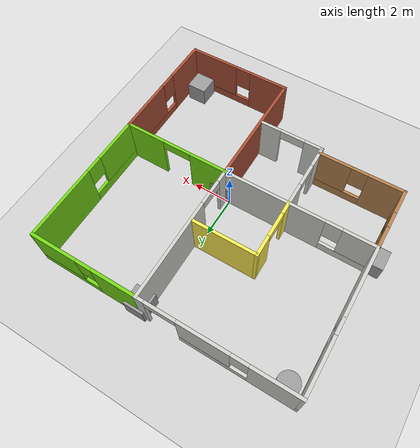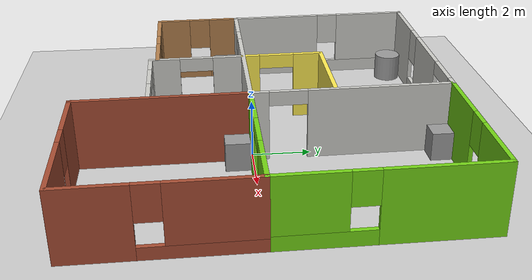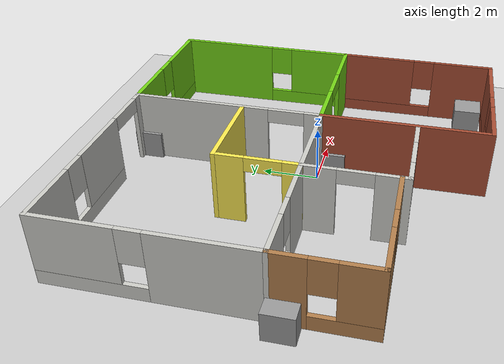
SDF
<sdf version="1.6">
 <world name="default">
  <light name="sun" type="directional">
   <pose>0 0 10 0 -0 0</pose>
   <diffuse>0.8 0.8 0.8 1</diffuse>
   <specular>0.2 0.2 0.2 1</specular>
   <attenuation>
    <range>1000</range>
    <constant>0.9</constant>
    <linear>0.01</linear>
    <quadratic>0.001</quadratic>
   </attenuation>
   <direction>-0.5 0.1 -0.9</direction>
  </light>
  <model name="ground_plane">
   <static>1</static>
   <link name="link">
    <collision name="collision">
     <geometry><plane><normal>0 0 1</normal><size>100 100</size></plane></geometry>
     <surface>
      <contact><collide_bitmask>65535</collide_bitmask></contact>
      <friction><ode><mu>100</mu><mu2>50</mu2></ode></friction>
     </surface>
    </collision>
    <visual name="visual">
     <cast_shadows>0</cast_shadows>
     <geometry><plane><normal>0 0 1</normal><size>100 100</size></plane></geometry>
     <material>
      <script><uri>file://media/materials/scripts/gazebo.material</uri><name>Gazebo/Grey</name></script>
     </material>
    </visual>
   </link>
  </model>
  <gravity>0 0 -9.8</gravity>
  <magnetic_field>6e-06 2.3e-05 -4.2e-05</magnetic_field>
  <atmosphere type="adiabatic"/>
  <physics name="default_physics" default="0" type="ode">
   <max_step_size>0.001</max_step_size>
   <real_time_factor>1</real_time_factor>
   <real_time_update_rate>1000</real_time_update_rate>
  </physics>
  <scene><ambient>0.4 0.4 0.4 1</ambient><background>0.7 0.7 0.7 1</background><shadows>1</shadows></scene>
  <spherical_coordinates>
   <surface_model>EARTH_WGS84</surface_model>
   <latitude_deg>0</latitude_deg>
   <longitude_deg>0</longitude_deg>
   <elevation>0</elevation>
   <heading_deg>0</heading_deg>
  </spherical_coordinates>
  <model name="trotbot">
   <pose>-0.746359 0.45451 0 0.004921 0.010968 0.003426</pose>
   <link name="Wall_0">
    <pose>-2.67518 6.34997 0 0 -0 0</pose>
    <visual name="Wall_0_Visual_0">
     <pose>-2.59633 0 1.25 0 -0 0</pose>
     <geometry><box><size>2.30734 0.15 2.5</size></box></geometry>
     <material>
      <script><uri>file://media/materials/scripts/gazebo.material</uri><name>Gazebo/CeilingTiled</name></script>
      <ambient>0.435294 0.796078 0.67451 1</ambient>
     </material>
     <meta><layer>0</layer></meta>
    </visual>
    <collision name="Wall_0_Collision_0">
     <geometry><box><size>2.30734 0.15 2.5</size></box></geometry>
     <pose>-2.59633 0 1.25 0 -0 0</pose>
    </collision>
    <visual name="Wall_0_Visual_1">
     <pose>3.52539 0 1.25 0 -0 0</pose>
     <geometry><box><size>0.449218 0.15 2.5</size></box></geometry>
     <material>
      <script><uri>file://media/materials/scripts/gazebo.material</uri><name>Gazebo/CeilingTiled</name></script>
      <ambient>0.435294 0.796078 0.67451 1</ambient>
     </material>
     <meta><layer>0</layer></meta>
    </visual>
    <collision name="Wall_0_Collision_1">
     <geometry><box><size>0.449218 0.15 2.5</size></box></geometry>
     <pose>3.52539 0 1.25 0 -0 0</pose>
    </collision>
    <visual name="Wall_0_Visual_2">
     <pose>0.174887 0 0.25 0 -0 0</pose>
     <geometry><box><size>3.23509 0.15 0.5</size></box></geometry>
     <material>
      <script><uri>file://media/materials/scripts/gazebo.material</uri><name>Gazebo/CeilingTiled</name></script>
      <ambient>0.435294 0.796078 0.67451 1</ambient>
     </material>
     <meta><layer>0</layer></meta>
    </visual>
    <collision name="Wall_0_Collision_2">
     <geometry><box><size>3.23509 0.15 0.5</size></box></geometry>
     <pose>0.174887 0 0.25 0 -0 0</pose>
    </collision>
    <visual name="Wall_0_Visual_3">
     <pose>0.574887 0 1.5 0 -0 0</pose>
     <geometry><box><size>2.43509 0.15 2</size></box></geometry>
     <material>
      <script><uri>file://media/materials/scripts/gazebo.material</uri><name>Gazebo/CeilingTiled</name></script>
      <ambient>0.435294 0.796078 0.67451 1</ambient>
     </material>
     <meta><layer>0</layer></meta>
    </visual>
    <collision name="Wall_0_Collision_3">
     <geometry><box><size>2.43509 0.15 2</size></box></geometry>
     <pose>0.574887 0 1.5 0 -0 0</pose>
    </collision>
    <visual name="Wall_0_Visual_4">
     <pose>-1.04266 0 1.9 0 -0 0</pose>
     <geometry><box><size>0.8 0.15 1.2</size></box></geometry>
     <material>
      <script><uri>file://media/materials/scripts/gazebo.material</uri><name>Gazebo/CeilingTiled</name></script>
      <ambient>0.435294 0.796078 0.67451 1</ambient>
     </material>
     <meta><layer>0</layer></meta>
    </visual>
    <collision name="Wall_0_Collision_4">
     <geometry><box><size>0.8 0.15 1.2</size></box></geometry>
     <pose>-1.04266 0 1.9 0 -0 0</pose>
    </collision>
    <visual name="Wall_0_Visual_5">
     <pose>2.54661 0 2.25 0 -0 0</pose>
     <geometry><box><size>1.50835 0.15 0.5</size></box></geometry>
     <material>
      <script><uri>file://media/materials/scripts/gazebo.material</uri><name>Gazebo/CeilingTiled</name></script>
      <ambient>0.435294 0.796078 0.67451 1</ambient>
     </material>
     <meta><layer>0</layer></meta>
    </visual>
    <collision name="Wall_0_Collision_5">
     <geometry><box><size>1.50835 0.15 0.5</size></box></geometry>
     <pose>2.54661 0 2.25 0 -0 0</pose>
    </collision>
   </link>
   <link name="Wall_1">
    <pose>0.999823 2.92497 0 0 -0 -1.5708</pose>
    <visual name="Wall_1_Visual_0">
     <pose>-0.990533 0 1.25 0 -0 0</pose>
     <geometry><box><size>5.01893 0.15 2.5</size></box></geometry>
     <material>
      <script><uri>file://media/materials/scripts/gazebo.material</uri><name>Gazebo/CeilingTiled</name></script>
      <ambient>0.45098 0.823529 0.0862745 1</ambient>
     </material>
     <meta><layer>0</layer></meta>
    </visual>
    <collision name="Wall_1_Collision_0">
     <geometry><box><size>5.01893 0.15 2.5</size></box></geometry>
     <pose>-0.990533 0 1.25 0 -0 0</pose>
    </collision>
    <visual name="Wall_1_Visual_1">
     <pose>3.15784 0 1.25 0 -0 0</pose>
     <geometry><box><size>0.684316 0.15 2.5</size></box></geometry>
     <material>
      <script><uri>file://media/materials/scripts/gazebo.material</uri><name>Gazebo/CeilingTiled</name></script>
      <ambient>0.45098 0.823529 0.0862745 1</ambient>
     </material>
     <meta><layer>0</layer></meta>
    </visual>
    <collision name="Wall_1_Collision_1">
     <geometry><box><size>0.684316 0.15 2.5</size></box></geometry>
     <pose>3.15784 0 1.25 0 -0 0</pose>
    </collision>
    <visual name="Wall_1_Visual_2">
     <pose>2.16731 0 2.25 0 -0 0</pose>
     <geometry><box><size>1.29675 0.15 0.5</size></box></geometry>
     <material>
      <script><uri>file://media/materials/scripts/gazebo.material</uri><name>Gazebo/CeilingTiled</name></script>
      <ambient>0.45098 0.823529 0.0862745 1</ambient>
     </material>
     <meta><layer>0</layer></meta>
    </visual>
    <collision name="Wall_1_Collision_2">
     <geometry><box><size>1.29675 0.15 0.5</size></box></geometry>
     <pose>2.16731 0 2.25 0 -0 0</pose>
    </collision>
   </link>
   <link name="Wall_10">
    <pose>3.675 -0.500009 0 0 -0 -3.14158</pose>
    <visual name="Wall_10_Visual_0">
     <pose>-1.70705 0 1.25 0 -0 0</pose>
     <geometry><box><size>2.0859 0.15 2.5</size></box></geometry>
     <material>
      <script><uri>file://media/materials/scripts/gazebo.material</uri><name>Gazebo/Grey</name></script>
      <ambient>0.45098 0.823529 0.0862745 1</ambient>
     </material>
     <meta><layer>0</layer></meta>
    </visual>
    <collision name="Wall_10_Collision_0">
     <geometry><box><size>2.0859 0.15 2.5</size></box></geometry>
     <pose>-1.70705 0 1.25 0 -0 0</pose>
    </collision>
    <visual name="Wall_10_Visual_1">
     <pose>1.77067 0 1.25 0 -0 0</pose>
     <geometry><box><size>1.95865 0.15 2.5</size></box></geometry>
     <material>
      <script><uri>file://media/materials/scripts/gazebo.material</uri><name>Gazebo/Grey</name></script>
      <ambient>0.45098 0.823529 0.0862745 1</ambient>
     </material>
     <meta><layer>0</layer></meta>
    </visual>
    <collision name="Wall_10_Collision_1">
     <geometry><box><size>1.95865 0.15 2.5</size></box></geometry>
     <pose>1.77067 0 1.25 0 -0 0</pose>
    </collision>
    <visual name="Wall_10_Visual_2">
     <pose>0.063623 0 2.25 0 -0 0</pose>
     <geometry><box><size>1.45545 0.15 0.5</size></box></geometry>
     <material>
      <script><uri>file://media/materials/scripts/gazebo.material</uri><name>Gazebo/Grey</name></script>
      <ambient>0.45098 0.823529 0.0862745 1</ambient>
     </material>
     <meta><layer>0</layer></meta>
    </visual>
    <collision name="Wall_10_Collision_2">
     <geometry><box><size>1.45545 0.15 0.5</size></box></geometry>
     <pose>0.063623 0 2.25 0 -0 0</pose>
    </collision>
   </link>
   <link name="Wall_11">
    <collision name="Wall_11_Collision">
     <geometry><box><size>6 0.15 2.5</size></box></geometry>
     <pose>0 0 1.25 0 -0 0</pose>
    </collision>
    <visual name="Wall_11_Visual">
     <pose>0 0 1.25 0 -0 0</pose>
     <geometry><box><size>6 0.15 2.5</size></box></geometry>
     <material>
      <script><uri>file://media/materials/scripts/gazebo.material</uri><name>Gazebo/Bricks</name></script>
      <ambient>0.180392 0.203922 0.211765 1</ambient>
     </material>
     <meta><layer>0</layer></meta>
    </visual>
    <pose>1 -3.42501 0 0 -0 -1.57074</pose>
   </link>
   <link name="Wall_12">
    <pose>3.67518 -6.34999 0 0 -0 0</pose>
    <visual name="Wall_12_Visual_0">
     <pose>-1.72583 0 1.25 0 -0 0</pose>
     <geometry><box><size>2.04833 0.15 2.5</size></box></geometry>
     <material>
      <script><uri>file://media/materials/scripts/gazebo.material</uri><name>Gazebo/Bricks</name></script>
      <ambient>0.180392 0.203922 0.211765 1</ambient>
     </material>
     <meta><layer>0</layer></meta>
    </visual>
    <collision name="Wall_12_Collision_0">
     <geometry><box><size>2.04833 0.15 2.5</size></box></geometry>
     <pose>-1.72583 0 1.25 0 -0 0</pose>
    </collision>
    <visual name="Wall_12_Visual_1">
     <pose>1.02417 0 0.25 0 -0 0</pose>
     <geometry><box><size>3.45167 0.15 0.5</size></box></geometry>
     <material>
      <script><uri>file://media/materials/scripts/gazebo.material</uri><name>Gazebo/Bricks</name></script>
      <ambient>0.180392 0.203922 0.211765 1</ambient>
     </material>
     <meta><layer>0</layer></meta>
    </visual>
    <collision name="Wall_12_Collision_1">
     <geometry><box><size>3.45167 0.15 0.5</size></box></geometry>
     <pose>1.02417 0 0.25 0 -0 0</pose>
    </collision>
    <visual name="Wall_12_Visual_2">
     <pose>1.42417 0 1.5 0 -0 0</pose>
     <geometry><box><size>2.65167 0.15 2</size></box></geometry>
     <material>
      <script><uri>file://media/materials/scripts/gazebo.material</uri><name>Gazebo/Bricks</name></script>
      <ambient>0.180392 0.203922 0.211765 1</ambient>
     </material>
     <meta><layer>0</layer></meta>
    </visual>
    <collision name="Wall_12_Collision_2">
     <geometry><box><size>2.65167 0.15 2</size></box></geometry>
     <pose>1.42417 0 1.5 0 -0 0</pose>
    </collision>
    <visual name="Wall_12_Visual_3">
     <pose>-0.301669 0 1.9 0 -0 0</pose>
     <geometry><box><size>0.8 0.15 1.2</size></box></geometry>
     <material>
      <script><uri>file://media/materials/scripts/gazebo.material</uri><name>Gazebo/Bricks</name></script>
      <ambient>0.180392 0.203922 0.211765 1</ambient>
     </material>
     <meta><layer>0</layer></meta>
    </visual>
    <collision name="Wall_12_Collision_3">
     <geometry><box><size>0.8 0.15 1.2</size></box></geometry>
     <pose>-0.301669 0 1.9 0 -0 0</pose>
    </collision>
   </link>
   <link name="Wall_13">
    <pose>6.35018 -3.42499 0 0 -0 1.5708</pose>
    <visual name="Wall_13_Visual_0">
     <pose>-1.85058 0 1.25 0 -0 0</pose>
     <geometry><box><size>2.29883 0.15 2.5</size></box></geometry>
     <material>
      <script><uri>file://media/materials/scripts/gazebo.material</uri><name>Gazebo/Bricks</name></script>
      <ambient>0.12549 0.290196 0.529412 1</ambient>
     </material>
     <meta><layer>0</layer></meta>
    </visual>
    <collision name="Wall_13_Collision_0">
     <geometry><box><size>2.29883 0.15 2.5</size></box></geometry>
     <pose>-1.85058 0 1.25 0 -0 0</pose>
    </collision>
    <visual name="Wall_13_Visual_1">
     <pose>1.14942 0 0.25 0 -0 0</pose>
     <geometry><box><size>3.70117 0.15 0.5</size></box></geometry>
     <material>
      <script><uri>file://media/materials/scripts/gazebo.material</uri><name>Gazebo/Bricks</name></script>
      <ambient>0.12549 0.290196 0.529412 1</ambient>
     </material>
     <meta><layer>0</layer></meta>
    </visual>
    <collision name="Wall_13_Collision_1">
     <geometry><box><size>3.70117 0.15 0.5</size></box></geometry>
     <pose>1.14942 0 0.25 0 -0 0</pose>
    </collision>
    <visual name="Wall_13_Visual_2">
     <pose>1.54942 0 1.5 0 -0 0</pose>
     <geometry><box><size>2.90117 0.15 2</size></box></geometry>
     <material>
      <script><uri>file://media/materials/scripts/gazebo.material</uri><name>Gazebo/Bricks</name></script>
      <ambient>0.12549 0.290196 0.529412 1</ambient>
     </material>
     <meta><layer>0</layer></meta>
    </visual>
    <collision name="Wall_13_Collision_2">
     <geometry><box><size>2.90117 0.15 2</size></box></geometry>
     <pose>1.54942 0 1.5 0 -0 0</pose>
    </collision>
    <visual name="Wall_13_Visual_3">
     <pose>-0.301165 0 1.9 0 -0 0</pose>
     <geometry><box><size>0.8 0.15 1.2</size></box></geometry>
     <material>
      <script><uri>file://media/materials/scripts/gazebo.material</uri><name>Gazebo/Bricks</name></script>
      <ambient>0.12549 0.290196 0.529412 1</ambient>
     </material>
     <meta><layer>0</layer></meta>
    </visual>
    <collision name="Wall_13_Collision_3">
     <geometry><box><size>0.8 0.15 1.2</size></box></geometry>
     <pose>-0.301165 0 1.9 0 -0 0</pose>
    </collision>
   </link>
   <link name="Wall_15">
    <pose>-2.22016 0.922886 0 0 -0 1.57078</pose>
    <visual name="Wall_15_Visual_0">
     <pose>-1.16334 0 1.25 0 -0 0</pose>
     <geometry><box><size>0.673314 0.15 2.5</size></box></geometry>
     <material>
      <script><uri>file://media/materials/scripts/gazebo.material</uri><name>Gazebo/Grey</name></script>
      <ambient>0.988235 0.913725 0.309804 1</ambient>
     </material>
     <meta><layer>0</layer></meta>
    </visual>
    <collision name="Wall_15_Collision_0">
     <geometry><box><size>0.673314 0.15 2.5</size></box></geometry>
     <pose>-1.16334 0 1.25 0 -0 0</pose>
    </collision>
    <visual name="Wall_15_Visual_1">
     <pose>0.958582 0 1.25 0 -0 0</pose>
     <geometry><box><size>1.08284 0.15 2.5</size></box></geometry>
     <material>
      <script><uri>file://media/materials/scripts/gazebo.material</uri><name>Gazebo/Grey</name></script>
      <ambient>0.988235 0.913725 0.309804 1</ambient>
     </material>
     <meta><layer>0</layer></meta>
    </visual>
    <collision name="Wall_15_Collision_1">
     <geometry><box><size>1.08284 0.15 2.5</size></box></geometry>
     <pose>0.958582 0 1.25 0 -0 0</pose>
    </collision>
    <visual name="Wall_15_Visual_2">
     <pose>-0.204761 0 2.25 0 -0 0</pose>
     <geometry><box><size>1.24385 0.15 0.5</size></box></geometry>
     <material>
      <script><uri>file://media/materials/scripts/gazebo.material</uri><name>Gazebo/Grey</name></script>
      <ambient>0.988235 0.913725 0.309804 1</ambient>
     </material>
     <meta><layer>0</layer></meta>
    </visual>
    <collision name="Wall_15_Collision_2">
     <geometry><box><size>1.24385 0.15 0.5</size></box></geometry>
     <pose>-0.204761 0 2.25 0 -0 0</pose>
    </collision>
   </link>
   <link name="Wall_16">
    <collision name="Wall_16_Collision">
     <geometry><box><size>3.25 0.15 2.5</size></box></geometry>
     <pose>0 0 1.25 0 -0 0</pose>
    </collision>
    <visual name="Wall_16_Visual">
     <pose>0 0 1.25 0 -0 0</pose>
     <geometry><box><size>3.25 0.15 2.5</size></box></geometry>
     <material>
      <script><uri>file://media/materials/scripts/gazebo.material</uri><name>Gazebo/Grey</name></script>
      <ambient>0.988235 0.913725 0.309804 1</ambient>
     </material>
     <meta><layer>0</layer></meta>
    </visual>
    <pose>-0.670142 2.3478 0 0 -0 0</pose>
   </link>
   <link name="Wall_18">
    <pose>-2.22018 -2.17703 0 0 -0 -1.5708</pose>
    <visual name="Wall_18_Visual_0">
     <pose>-1.15899 0 1.25 0 -0 0</pose>
     <geometry><box><size>1.18202 0.15 2.5</size></box></geometry>
     <material>
      <script><uri>file://media/materials/scripts/gazebo.material</uri><name>Gazebo/CeilingTiled</name></script>
      <ambient>0.996078 0.47451 0.0196078 1</ambient>
     </material>
     <meta><layer>0</layer></meta>
    </visual>
    <collision name="Wall_18_Collision_0">
     <geometry><box><size>1.18202 0.15 2.5</size></box></geometry>
     <pose>-1.15899 0 1.25 0 -0 0</pose>
    </collision>
    <visual name="Wall_18_Visual_1">
     <pose>1.18649 0 1.25 0 -0 0</pose>
     <geometry><box><size>1.12703 0.15 2.5</size></box></geometry>
     <material>
      <script><uri>file://media/materials/scripts/gazebo.material</uri><name>Gazebo/CeilingTiled</name></script>
      <ambient>0.996078 0.47451 0.0196078 1</ambient>
     </material>
     <meta><layer>0</layer></meta>
    </visual>
    <collision name="Wall_18_Collision_1">
     <geometry><box><size>1.12703 0.15 2.5</size></box></geometry>
     <pose>1.18649 0 1.25 0 -0 0</pose>
    </collision>
    <visual name="Wall_18_Visual_2">
     <pose>0.027498 0 2.25 0 -0 0</pose>
     <geometry><box><size>1.19095 0.15 0.5</size></box></geometry>
     <material>
      <script><uri>file://media/materials/scripts/gazebo.material</uri><name>Gazebo/CeilingTiled</name></script>
      <ambient>0.996078 0.47451 0.0196078 1</ambient>
     </material>
     <meta><layer>0</layer></meta>
    </visual>
    <collision name="Wall_18_Collision_2">
     <geometry><box><size>1.19095 0.15 0.5</size></box></geometry>
     <pose>0.027498 0 2.25 0 -0 0</pose>
    </collision>
   </link>
   <link name="Wall_2">
    <pose>-2.67518 -0.500031 0 0 -0 3.14159</pose>
    <visual name="Wall_2_Visual_0">
     <pose>-1.22424 0 1.25 0 -0 0</pose>
     <geometry><box><size>5.05152 0.15 2.5</size></box></geometry>
     <material>
      <script><uri>file://media/materials/scripts/gazebo.material</uri><name>Gazebo/CeilingTiled</name></script>
      <ambient>0.996078 0.47451 0.0196078 1</ambient>
     </material>
     <meta><layer>0</layer></meta>
    </visual>
    <collision name="Wall_2_Collision_0">
     <geometry><box><size>5.05152 0.15 2.5</size></box></geometry>
     <pose>-1.22424 0 1.25 0 -0 0</pose>
    </collision>
    <visual name="Wall_2_Visual_1">
     <pose>2.52576 0 0.25 0 -0 0</pose>
     <geometry><box><size>2.44848 0.15 0.5</size></box></geometry>
     <material>
      <script><uri>file://media/materials/scripts/gazebo.material</uri><name>Gazebo/CeilingTiled</name></script>
      <ambient>0.996078 0.47451 0.0196078 1</ambient>
     </material>
     <meta><layer>0</layer></meta>
    </visual>
    <collision name="Wall_2_Collision_1">
     <geometry><box><size>2.44848 0.15 0.5</size></box></geometry>
     <pose>2.52576 0 0.25 0 -0 0</pose>
    </collision>
    <visual name="Wall_2_Visual_2">
     <pose>2.92576 0 1.5 0 -0 0</pose>
     <geometry><box><size>1.64848 0.15 2</size></box></geometry>
     <material>
      <script><uri>file://media/materials/scripts/gazebo.material</uri><name>Gazebo/CeilingTiled</name></script>
      <ambient>0.996078 0.47451 0.0196078 1</ambient>
     </material>
     <meta><layer>0</layer></meta>
    </visual>
    <collision name="Wall_2_Collision_2">
     <geometry><box><size>1.64848 0.15 2</size></box></geometry>
     <pose>2.92576 0 1.5 0 -0 0</pose>
    </collision>
    <visual name="Wall_2_Visual_3">
     <pose>1.70152 0 1.9 0 -0 0</pose>
     <geometry><box><size>0.8 0.15 1.2</size></box></geometry>
     <material>
      <script><uri>file://media/materials/scripts/gazebo.material</uri><name>Gazebo/CeilingTiled</name></script>
      <ambient>0.996078 0.47451 0.0196078 1</ambient>
     </material>
     <meta><layer>0</layer></meta>
    </visual>
    <collision name="Wall_2_Collision_3">
     <geometry><box><size>0.8 0.15 1.2</size></box></geometry>
     <pose>1.70152 0 1.9 0 -0 0</pose>
    </collision>
   </link>
   <link name="Wall_21">
    <pose>-0.670177 -3.85203 0 0 -0 0</pose>
    <visual name="Wall_21_Visual_0">
     <pose>-1.14197 0 1.25 0 -0 0</pose>
     <geometry><box><size>0.966062 0.15 2.5</size></box></geometry>
     <material>
      <script><uri>file://media/materials/scripts/gazebo.material</uri><name>Gazebo/CeilingTiled</name></script>
      <ambient>0.996078 0.47451 0.0196078 1</ambient>
     </material>
     <meta><layer>0</layer></meta>
    </visual>
    <collision name="Wall_21_Collision_0">
     <geometry><box><size>0.966062 0.15 2.5</size></box></geometry>
     <pose>-1.14197 0 1.25 0 -0 0</pose>
    </collision>
    <visual name="Wall_21_Visual_1">
     <pose>1.09938 0 1.25 0 -0 0</pose>
     <geometry><box><size>1.05123 0.15 2.5</size></box></geometry>
     <material>
      <script><uri>file://media/materials/scripts/gazebo.material</uri><name>Gazebo/CeilingTiled</name></script>
      <ambient>0.996078 0.47451 0.0196078 1</ambient>
     </material>
     <meta><layer>0</layer></meta>
    </visual>
    <collision name="Wall_21_Collision_1">
     <geometry><box><size>1.05123 0.15 2.5</size></box></geometry>
     <pose>1.09938 0 1.25 0 -0 0</pose>
    </collision>
    <visual name="Wall_21_Visual_2">
     <pose>-0.042586 0 2.25 0 -0 0</pose>
     <geometry><box><size>1.2327 0.15 0.5</size></box></geometry>
     <material>
      <script><uri>file://media/materials/scripts/gazebo.material</uri><name>Gazebo/CeilingTiled</name></script>
      <ambient>0.996078 0.47451 0.0196078 1</ambient>
     </material>
     <meta><layer>0</layer></meta>
    </visual>
    <collision name="Wall_21_Collision_2">
     <geometry><box><size>1.2327 0.15 0.5</size></box></geometry>
     <pose>-0.042586 0 2.25 0 -0 0</pose>
    </collision>
   </link>
   <link name="Wall_23">
    <pose>-6.35018 -2.05003 0 0 -0 -1.5708</pose>
    <visual name="Wall_23_Visual_0">
     <pose>-1.04095 0 1.25 0 -0 0</pose>
     <geometry><box><size>1.16811 0.15 2.5</size></box></geometry>
     <material>
      <script><uri>file://media/materials/scripts/gazebo.material</uri><name>Gazebo/Wood</name></script>
      <ambient>1 1 1 1</ambient>
     </material>
     <meta><layer>0</layer></meta>
    </visual>
    <collision name="Wall_23_Collision_0">
     <geometry><box><size>1.16811 0.15 2.5</size></box></geometry>
     <pose>-1.04095 0 1.25 0 -0 0</pose>
    </collision>
    <visual name="Wall_23_Visual_1">
     <pose>0.584055 0 0.25 0 -0 0</pose>
     <geometry><box><size>2.08189 0.15 0.5</size></box></geometry>
     <material>
      <script><uri>file://media/materials/scripts/gazebo.material</uri><name>Gazebo/Wood</name></script>
      <ambient>1 1 1 1</ambient>
     </material>
     <meta><layer>0</layer></meta>
    </visual>
    <collision name="Wall_23_Collision_1">
     <geometry><box><size>2.08189 0.15 0.5</size></box></geometry>
     <pose>0.584055 0 0.25 0 -0 0</pose>
    </collision>
    <visual name="Wall_23_Visual_2">
     <pose>0.984055 0 1.5 0 -0 0</pose>
     <geometry><box><size>1.28189 0.15 2</size></box></geometry>
     <material>
      <script><uri>file://media/materials/scripts/gazebo.material</uri><name>Gazebo/Wood</name></script>
      <ambient>1 1 1 1</ambient>
     </material>
     <meta><layer>0</layer></meta>
    </visual>
    <collision name="Wall_23_Collision_2">
     <geometry><box><size>1.28189 0.15 2</size></box></geometry>
     <pose>0.984055 0 1.5 0 -0 0</pose>
    </collision>
    <visual name="Wall_23_Visual_3">
     <pose>-0.056891 0 1.9 0 -0 0</pose>
     <geometry><box><size>0.8 0.15 1.2</size></box></geometry>
     <material>
      <script><uri>file://media/materials/scripts/gazebo.material</uri><name>Gazebo/Wood</name></script>
      <ambient>1 1 1 1</ambient>
     </material>
     <meta><layer>0</layer></meta>
    </visual>
    <collision name="Wall_23_Collision_3">
     <geometry><box><size>0.8 0.15 1.2</size></box></geometry>
     <pose>-0.056891 0 1.9 0 -0 0</pose>
    </collision>
   </link>
   <link name="Wall_24">
    <pose>-4.30018 -3.60003 0 0 -0 0</pose>
    <visual name="Wall_24_Visual_0">
     <pose>-1.23379 0 1.25 0 -0 0</pose>
     <geometry><box><size>1.78242 0.15 2.5</size></box></geometry>
     <material>
      <script><uri>file://media/materials/scripts/gazebo.material</uri><name>Gazebo/Wood</name></script>
      <ambient>1 1 1 1</ambient>
     </material>
     <meta><layer>0</layer></meta>
    </visual>
    <collision name="Wall_24_Collision_0">
     <geometry><box><size>1.78242 0.15 2.5</size></box></geometry>
     <pose>-1.23379 0 1.25 0 -0 0</pose>
    </collision>
    <visual name="Wall_24_Visual_1">
     <pose>0.89121 0 0.25 0 -0 0</pose>
     <geometry><box><size>2.46758 0.15 0.5</size></box></geometry>
     <material>
      <script><uri>file://media/materials/scripts/gazebo.material</uri><name>Gazebo/Wood</name></script>
      <ambient>1 1 1 1</ambient>
     </material>
     <meta><layer>0</layer></meta>
    </visual>
    <collision name="Wall_24_Collision_1">
     <geometry><box><size>2.46758 0.15 0.5</size></box></geometry>
     <pose>0.89121 0 0.25 0 -0 0</pose>
    </collision>
    <visual name="Wall_24_Visual_2">
     <pose>1.29121 0 1.5 0 -0 0</pose>
     <geometry><box><size>1.66758 0.15 2</size></box></geometry>
     <material>
      <script><uri>file://media/materials/scripts/gazebo.material</uri><name>Gazebo/Wood</name></script>
      <ambient>1 1 1 1</ambient>
     </material>
     <meta><layer>0</layer></meta>
    </visual>
    <collision name="Wall_24_Collision_2">
     <geometry><box><size>1.66758 0.15 2</size></box></geometry>
     <pose>1.29121 0 1.5 0 -0 0</pose>
    </collision>
    <visual name="Wall_24_Visual_3">
     <pose>0.057419 0 1.9 0 -0 0</pose>
     <geometry><box><size>0.8 0.15 1.2</size></box></geometry>
     <material>
      <script><uri>file://media/materials/scripts/gazebo.material</uri><name>Gazebo/Wood</name></script>
      <ambient>1 1 1 1</ambient>
     </material>
     <meta><layer>0</layer></meta>
    </visual>
    <collision name="Wall_24_Collision_3">
     <geometry><box><size>0.8 0.15 1.2</size></box></geometry>
     <pose>0.057419 0 1.9 0 -0 0</pose>
    </collision>
   </link>
   <link name="Wall_3">
    <pose>-6.35018 2.92497 0 0 -0 1.5708</pose>
    <visual name="Wall_3_Visual_0">
     <pose>-1.76405 0 1.25 0 -0 0</pose>
     <geometry><box><size>3.47189 0.15 2.5</size></box></geometry>
     <material>
      <script><uri>file://media/materials/scripts/gazebo.material</uri><name>Gazebo/CeilingTiled</name></script>
      <ambient>0.435294 0.796078 0.67451 1</ambient>
     </material>
     <meta><layer>0</layer></meta>
    </visual>
    <collision name="Wall_3_Collision_0">
     <geometry><box><size>3.47189 0.15 2.5</size></box></geometry>
     <pose>-1.76405 0 1.25 0 -0 0</pose>
    </collision>
    <visual name="Wall_3_Visual_1">
     <pose>1.73595 0 0.25 0 -0 0</pose>
     <geometry><box><size>3.52811 0.15 0.5</size></box></geometry>
     <material>
      <script><uri>file://media/materials/scripts/gazebo.material</uri><name>Gazebo/CeilingTiled</name></script>
      <ambient>0.435294 0.796078 0.67451 1</ambient>
     </material>
     <meta><layer>0</layer></meta>
    </visual>
    <collision name="Wall_3_Collision_1">
     <geometry><box><size>3.52811 0.15 0.5</size></box></geometry>
     <pose>1.73595 0 0.25 0 -0 0</pose>
    </collision>
    <visual name="Wall_3_Visual_2">
     <pose>2.13595 0 1.5 0 -0 0</pose>
     <geometry><box><size>2.72811 0.15 2</size></box></geometry>
     <material>
      <script><uri>file://media/materials/scripts/gazebo.material</uri><name>Gazebo/CeilingTiled</name></script>
      <ambient>0.435294 0.796078 0.67451 1</ambient>
     </material>
     <meta><layer>0</layer></meta>
    </visual>
    <collision name="Wall_3_Collision_2">
     <geometry><box><size>2.72811 0.15 2</size></box></geometry>
     <pose>2.13595 0 1.5 0 -0 0</pose>
    </collision>
    <visual name="Wall_3_Visual_3">
     <pose>0.371891 0 1.9 0 -0 0</pose>
     <geometry><box><size>0.8 0.15 1.2</size></box></geometry>
     <material>
      <script><uri>file://media/materials/scripts/gazebo.material</uri><name>Gazebo/CeilingTiled</name></script>
      <ambient>0.435294 0.796078 0.67451 1</ambient>
     </material>
     <meta><layer>0</layer></meta>
    </visual>
    <collision name="Wall_3_Collision_3">
     <geometry><box><size>0.8 0.15 1.2</size></box></geometry>
     <pose>0.371891 0 1.9 0 -0 0</pose>
    </collision>
   </link>
   <link name="Wall_6">
    <pose>3.675 6.34999 0 0 -0 8e-06</pose>
    <visual name="Wall_6_Visual_0">
     <pose>-1.60681 0 1.25 0 -0 0</pose>
     <geometry><box><size>2.28638 0.15 2.5</size></box></geometry>
     <material>
      <script><uri>file://media/materials/scripts/gazebo.material</uri><name>Gazebo/Grey</name></script>
      <ambient>0.45098 0.823529 0.0862745 1</ambient>
     </material>
     <meta><layer>0</layer></meta>
    </visual>
    <collision name="Wall_6_Collision_0">
     <geometry><box><size>2.28638 0.15 2.5</size></box></geometry>
     <pose>-1.60681 0 1.25 0 -0 0</pose>
    </collision>
    <visual name="Wall_6_Visual_1">
     <pose>1.14319 0 0.25 0 -0 0</pose>
     <geometry><box><size>3.21362 0.15 0.5</size></box></geometry>
     <material>
      <script><uri>file://media/materials/scripts/gazebo.material</uri><name>Gazebo/Grey</name></script>
      <ambient>0.45098 0.823529 0.0862745 1</ambient>
     </material>
     <meta><layer>0</layer></meta>
    </visual>
    <collision name="Wall_6_Collision_1">
     <geometry><box><size>3.21362 0.15 0.5</size></box></geometry>
     <pose>1.14319 0 0.25 0 -0 0</pose>
    </collision>
    <visual name="Wall_6_Visual_2">
     <pose>1.54319 0 1.5 0 -0 0</pose>
     <geometry><box><size>2.41362 0.15 2</size></box></geometry>
     <material>
      <script><uri>file://media/materials/scripts/gazebo.material</uri><name>Gazebo/Grey</name></script>
      <ambient>0.45098 0.823529 0.0862745 1</ambient>
     </material>
     <meta><layer>0</layer></meta>
    </visual>
    <collision name="Wall_6_Collision_2">
     <geometry><box><size>2.41362 0.15 2</size></box></geometry>
     <pose>1.54319 0 1.5 0 -0 0</pose>
    </collision>
    <visual name="Wall_6_Visual_3">
     <pose>-0.063623 0 1.9 0 -0 0</pose>
     <geometry><box><size>0.8 0.15 1.2</size></box></geometry>
     <material>
      <script><uri>file://media/materials/scripts/gazebo.material</uri><name>Gazebo/Grey</name></script>
      <ambient>0.45098 0.823529 0.0862745 1</ambient>
     </material>
     <meta><layer>0</layer></meta>
    </visual>
    <collision name="Wall_6_Collision_3">
     <geometry><box><size>0.8 0.15 1.2</size></box></geometry>
     <pose>-0.063623 0 1.9 0 -0 0</pose>
    </collision>
   </link>
   <link name="Wall_9">
    <pose>6.35018 2.92501 0 0 -0 -1.5708</pose>
    <visual name="Wall_9_Visual_0">
     <pose>-1.61632 0 1.25 0 -0 0</pose>
     <geometry><box><size>3.76735 0.15 2.5</size></box></geometry>
     <material>
      <script><uri>file://media/materials/scripts/gazebo.material</uri><name>Gazebo/Grey</name></script>
      <ambient>0.45098 0.823529 0.0862745 1</ambient>
     </material>
     <meta><layer>0</layer></meta>
    </visual>
    <collision name="Wall_9_Collision_0">
     <geometry><box><size>3.76735 0.15 2.5</size></box></geometry>
     <pose>-1.61632 0 1.25 0 -0 0</pose>
    </collision>
    <visual name="Wall_9_Visual_1">
     <pose>1.88368 0 0.281 0 -0 0</pose>
     <geometry><box><size>3.23265 0.15 0.562</size></box></geometry>
     <material>
      <script><uri>file://media/materials/scripts/gazebo.material</uri><name>Gazebo/Grey</name></script>
      <ambient>0.45098 0.823529 0.0862745 1</ambient>
     </material>
     <meta><layer>0</layer></meta>
    </visual>
    <collision name="Wall_9_Collision_1">
     <geometry><box><size>3.23265 0.15 0.562</size></box></geometry>
     <pose>1.88368 0 0.281 0 -0 0</pose>
    </collision>
    <visual name="Wall_9_Visual_2">
     <pose>2.30868 0 1.531 0 -0 0</pose>
     <geometry><box><size>2.38265 0.15 1.938</size></box></geometry>
     <material>
      <script><uri>file://media/materials/scripts/gazebo.material</uri><name>Gazebo/Grey</name></script>
      <ambient>0.45098 0.823529 0.0862745 1</ambient>
     </material>
     <meta><layer>0</layer></meta>
    </visual>
    <collision name="Wall_9_Collision_2">
     <geometry><box><size>2.38265 0.15 1.938</size></box></geometry>
     <pose>2.30868 0 1.531 0 -0 0</pose>
    </collision>
    <visual name="Wall_9_Visual_3">
     <pose>0.692353 0 1.931 0 -0 0</pose>
     <geometry><box><size>0.85 0.15 1.138</size></box></geometry>
     <material>
      <script><uri>file://media/materials/scripts/gazebo.material</uri><name>Gazebo/Grey</name></script>
      <ambient>0.45098 0.823529 0.0862745 1</ambient>
     </material>
     <meta><layer>0</layer></meta>
    </visual>
    <collision name="Wall_9_Collision_3">
     <geometry><box><size>0.85 0.15 1.138</size></box></geometry>
     <pose>0.692353 0 1.931 0 -0 0</pose>
    </collision>
   </link>
   <static>1</static>
  </model>
  <model name="homes">
   <link name="link_15">
    <inertial>
     <mass>1</mass>
     <inertia>
      <ixx>0.166667</ixx>
      <ixy>0</ixy>
      <ixz>0</ixz>
      <iyy>0.166667</iyy>
      <iyz>0</iyz>
      <izz>0.166667</izz>
     </inertia>
    </inertial>
    <pose>2.09389 -1.77669 0 0 -0 0</pose>
    <visual name="visual">
     <geometry><box><size>1 1 1</size></box></geometry>
     <material>
      <lighting>1</lighting>
      <script><uri>file://media/materials/scripts/gazebo.material</uri><name>Gazebo/Grey</name></script>
      <shader type="pixel"/>
     </material>
    </visual>
    <collision name="collision">
     <geometry><box><size>1 1 1</size></box></geometry>
     <surface>
      <friction>
       <ode><mu>1</mu><mu2>1</mu2><fdir1>0 0 0</fdir1><slip1>0</slip1><slip2>0</slip2></ode>
       <torsional>
        <coefficient>1</coefficient>
        <patch_radius>0</patch_radius>
        <surface_radius>0</surface_radius>
        <use_patch_radius>1</use_patch_radius>
        <ode><slip>0</slip></ode>
       </torsional>
      </friction>
      <bounce><restitution_coefficient>0</restitution_coefficient><threshold>1e+06</threshold></bounce>
      <contact>
       <collide_without_contact>0</collide_without_contact>
       <collide_without_contact_bitmask>1</collide_without_contact_bitmask>
       <collide_bitmask>1</collide_bitmask>
       <ode>
        <soft_cfm>0</soft_cfm>
        <soft_erp>0.2</soft_erp>
        <kp>1e+13</kp>
        <kd>1</kd>
        <max_vel>0.01</max_vel>
        <min_depth>0</min_depth>
       </ode>
       <bullet>
        <split_impulse>1</split_impulse>
        <split_impulse_penetration_threshold>-0.01</split_impulse_penetration_threshold>
        <soft_cfm>0</soft_cfm>
        <soft_erp>0.2</soft_erp>
        <kp>1e+13</kp>
        <kd>1</kd>
       </bullet>
      </contact>
     </surface>
    </collision>
   </link>
   <link name="link_16">
    <inertial>
     <mass>1</mass>
     <inertia>
      <ixx>0.166667</ixx>
      <ixy>0</ixy>
      <ixz>0</ixz>
      <iyy>0.166667</iyy>
      <iyz>0</iyz>
      <izz>0.166667</izz>
     </inertia>
    </inertial>
    <pose>2.08127 5.18372 0 0 -0 0</pose>
    <visual name="visual">
     <geometry><box><size>1 1 1</size></box></geometry>
     <material>
      <lighting>1</lighting>
      <script><uri>file://media/materials/scripts/gazebo.material</uri><name>Gazebo/Grey</name></script>
      <shader type="pixel"/>
     </material>
    </visual>
    <collision name="collision">
     <geometry><box><size>1 1 1</size></box></geometry>
     <surface>
      <friction>
       <ode><mu>1</mu><mu2>1</mu2><fdir1>0 0 0</fdir1><slip1>0</slip1><slip2>0</slip2></ode>
       <torsional>
        <coefficient>1</coefficient>
        <patch_radius>0</patch_radius>
        <surface_radius>0</surface_radius>
        <use_patch_radius>1</use_patch_radius>
        <ode><slip>0</slip></ode>
       </torsional>
      </friction>
      <bounce><restitution_coefficient>0</restitution_coefficient><threshold>1e+06</threshold></bounce>
      <contact>
       <collide_without_contact>0</collide_without_contact>
       <collide_without_contact_bitmask>1</collide_without_contact_bitmask>
       <collide_bitmask>1</collide_bitmask>
       <ode>
        <soft_cfm>0</soft_cfm>
        <soft_erp>0.2</soft_erp>
        <kp>1e+13</kp>
        <kd>1</kd>
        <max_vel>0.01</max_vel>
        <min_depth>0</min_depth>
       </ode>
       <bullet>
        <split_impulse>1</split_impulse>
        <split_impulse_penetration_threshold>-0.01</split_impulse_penetration_threshold>
        <soft_cfm>0</soft_cfm>
        <soft_erp>0.2</soft_erp>
        <kp>1e+13</kp>
        <kd>1</kd>
       </bullet>
      </contact>
     </surface>
    </collision>
   </link>
   <link name="link_17">
    <inertial>
     <mass>1</mass>
     <inertia><ixx>0.145833</ixx><ixy>0</ixy><ixz>0</ixz><iyy>0.145833</iyy><iyz>0</iyz><izz>0.125</izz></inertia>
    </inertial>
    <pose>-4.86668 4.92216 0 0 -0 0</pose>
    <visual name="visual">
     <geometry><cylinder><radius>0.5</radius><length>1</length></cylinder></geometry>
     <material>
      <lighting>1</lighting>
      <script><uri>file://media/materials/scripts/gazebo.material</uri><name>Gazebo/Grey</name></script>
      <shader type="pixel"/>
     </material>
    </visual>
    <collision name="collision">
     <geometry><cylinder><radius>0.5</radius><length>1</length></cylinder></geometry>
     <surface>
      <friction>
       <ode><mu>1</mu><mu2>1</mu2><fdir1>0 0 0</fdir1><slip1>0</slip1><slip2>0</slip2></ode>
       <torsional>
        <coefficient>1</coefficient>
        <patch_radius>0</patch_radius>
        <surface_radius>0</surface_radius>
        <use_patch_radius>1</use_patch_radius>
        <ode><slip>0</slip></ode>
       </torsional>
      </friction>
      <bounce><restitution_coefficient>0</restitution_coefficient><threshold>1e+06</threshold></bounce>
      <contact>
       <collide_without_contact>0</collide_without_contact>
       <collide_without_contact_bitmask>1</collide_without_contact_bitmask>
       <collide_bitmask>1</collide_bitmask>
       <ode>
        <soft_cfm>0</soft_cfm>
        <soft_erp>0.2</soft_erp>
        <kp>1e+13</kp>
        <kd>1</kd>
        <max_vel>0.01</max_vel>
        <min_depth>0</min_depth>
       </ode>
       <bullet>
        <split_impulse>1</split_impulse>
        <split_impulse_penetration_threshold>-0.01</split_impulse_penetration_threshold>
        <soft_cfm>0</soft_cfm>
        <soft_erp>0.2</soft_erp>
        <kp>1e+13</kp>
        <kd>1</kd>
       </bullet>
      </contact>
     </surface>
    </collision>
   </link>
   <link name="link_18">
    <inertial>
     <mass>1</mass>
     <inertia>
      <ixx>0.166667</ixx>
      <ixy>0</ixy>
      <ixz>0</ixz>
      <iyy>0.166667</iyy>
      <iyz>0</iyz>
      <izz>0.166667</izz>
     </inertia>
    </inertial>
    <pose>6.41523 -6.49369 0 0 -0 0</pose>
    <visual name="visual">
     <geometry><box><size>1 1 1</size></box></geometry>
     <material>
      <lighting>1</lighting>
      <script><uri>file://media/materials/scripts/gazebo.material</uri><name>Gazebo/Grey</name></script>
      <shader type="pixel"/>
     </material>
    </visual>
    <collision name="collision">
     <geometry><box><size>1 1 1</size></box></geometry>
     <surface>
      <friction>
       <ode><mu>1</mu><mu2>1</mu2><fdir1>0 0 0</fdir1><slip1>0</slip1><slip2>0</slip2></ode>
       <torsional>
        <coefficient>1</coefficient>
        <patch_radius>0</patch_radius>
        <surface_radius>0</surface_radius>
        <use_patch_radius>1</use_patch_radius>
        <ode><slip>0</slip></ode>
       </torsional>
      </friction>
      <bounce><restitution_coefficient>0</restitution_coefficient><threshold>1e+06</threshold></bounce>
      <contact>
       <collide_without_contact>0</collide_without_contact>
       <collide_without_contact_bitmask>1</collide_without_contact_bitmask>
       <collide_bitmask>1</collide_bitmask>
       <ode>
        <soft_cfm>0</soft_cfm>
        <soft_erp>0.2</soft_erp>
        <kp>1e+13</kp>
        <kd>1</kd>
        <max_vel>0.01</max_vel>
        <min_depth>0</min_depth>
       </ode>
       <bullet>
        <split_impulse>1</split_impulse>
        <split_impulse_penetration_threshold>-0.01</split_impulse_penetration_threshold>
        <soft_cfm>0</soft_cfm>
        <soft_erp>0.2</soft_erp>
        <kp>1e+13</kp>
        <kd>1</kd>
       </bullet>
      </contact>
     </surface>
    </collision>
   </link>
   <link name="link_19">
    <inertial>
     <mass>1</mass>
     <inertia>
      <ixx>0.166667</ixx>
      <ixy>0</ixy>
      <ixz>0</ixz>
      <iyy>0.166667</iyy>
      <iyz>0</iyz>
      <izz>0.166667</izz>
     </inertia>
    </inertial>
    <pose>-5.72371 -1.8355 0 0 -0 0</pose>
    <visual name="visual">
     <geometry><box><size>1 1 1</size></box></geometry>
     <material>
      <lighting>1</lighting>
      <script><uri>file://media/materials/scripts/gazebo.material</uri><name>Gazebo/Grey</name></script>
      <shader type="pixel"/>
     </material>
    </visual>
    <collision name="collision">
     <geometry><box><size>1 1 1</size></box></geometry>
     <surface>
      <friction>
       <ode><mu>1</mu><mu2>1</mu2><fdir1>0 0 0</fdir1><slip1>0</slip1><slip2>0</slip2></ode>
       <torsional>
        <coefficient>1</coefficient>
        <patch_radius>0</patch_radius>
        <surface_radius>0</surface_radius>
        <use_patch_radius>1</use_patch_radius>
        <ode><slip>0</slip></ode>
       </torsional>
      </friction>
      <bounce><restitution_coefficient>0</restitution_coefficient><threshold>1e+06</threshold></bounce>
      <contact>
       <collide_without_contact>0</collide_without_contact>
       <collide_without_contact_bitmask>1</collide_without_contact_bitmask>
       <collide_bitmask>1</collide_bitmask>
       <ode>
        <soft_cfm>0</soft_cfm>
        <soft_erp>0.2</soft_erp>
        <kp>1e+13</kp>
        <kd>1</kd>
        <max_vel>0.01</max_vel>
        <min_depth>0</min_depth>
       </ode>
       <bullet>
        <split_impulse>1</split_impulse>
        <split_impulse_penetration_threshold>-0.01</split_impulse_penetration_threshold>
        <soft_cfm>0</soft_cfm>
        <soft_erp>0.2</soft_erp>
        <kp>1e+13</kp>
        <kd>1</kd>
       </bullet>
      </contact>
     </surface>
    </collision>
   </link>
   <static>0</static>
   <pose>-1.52992 1.31165 0.5 0 -0 0</pose>
  </model>
 </world>
</sdf>
